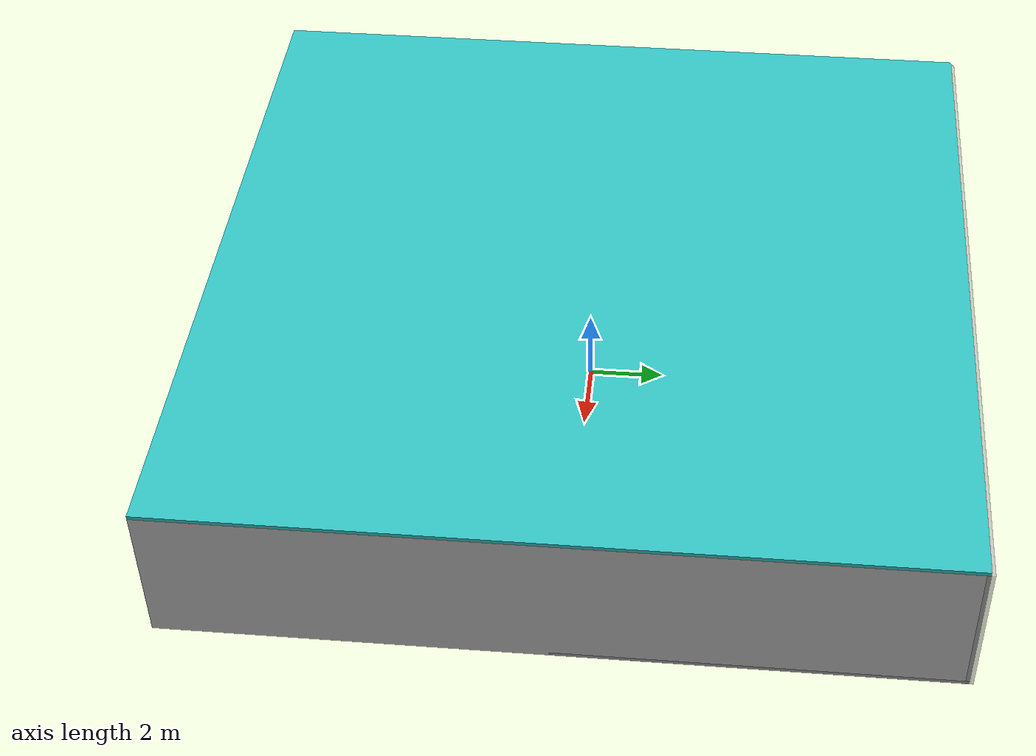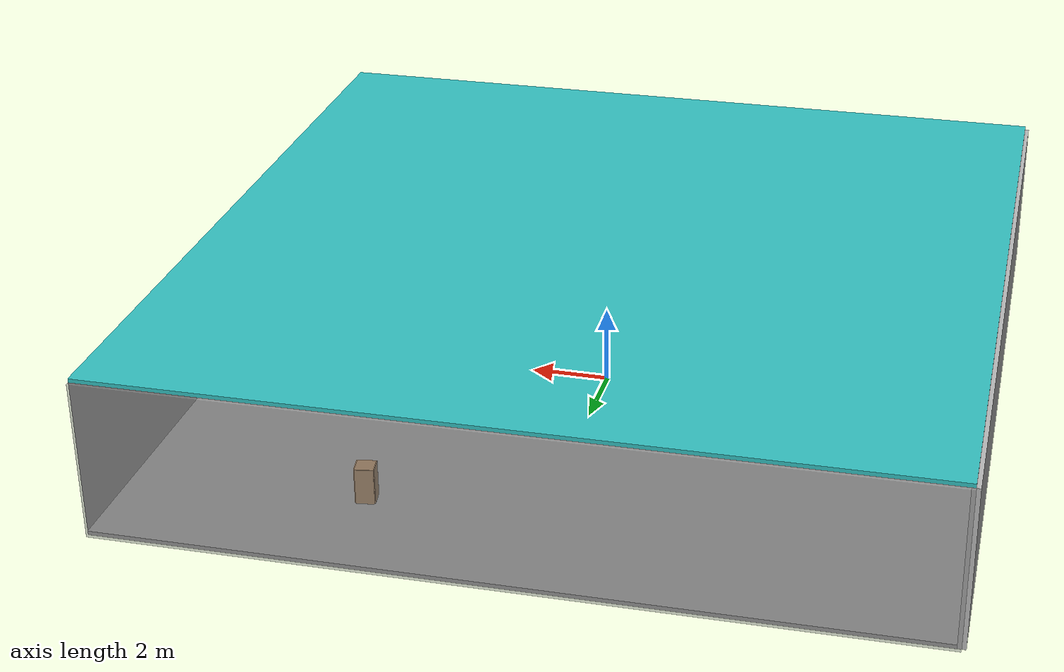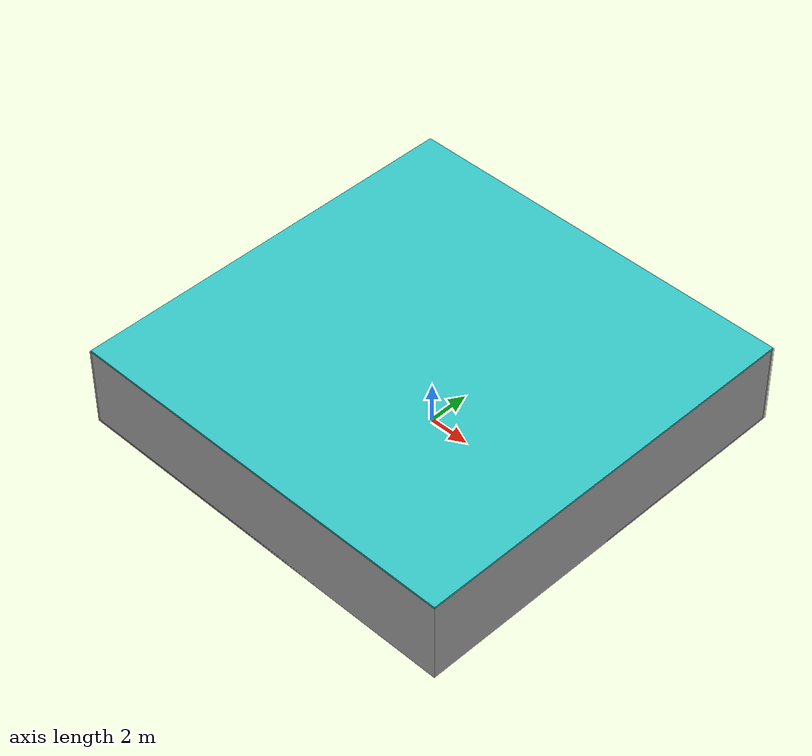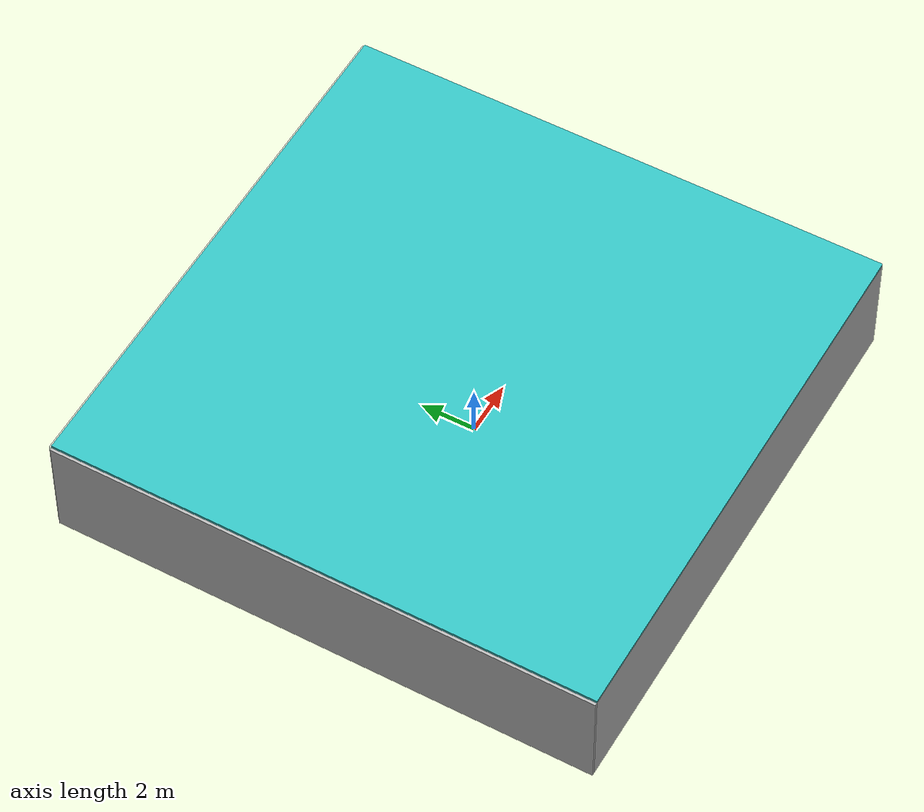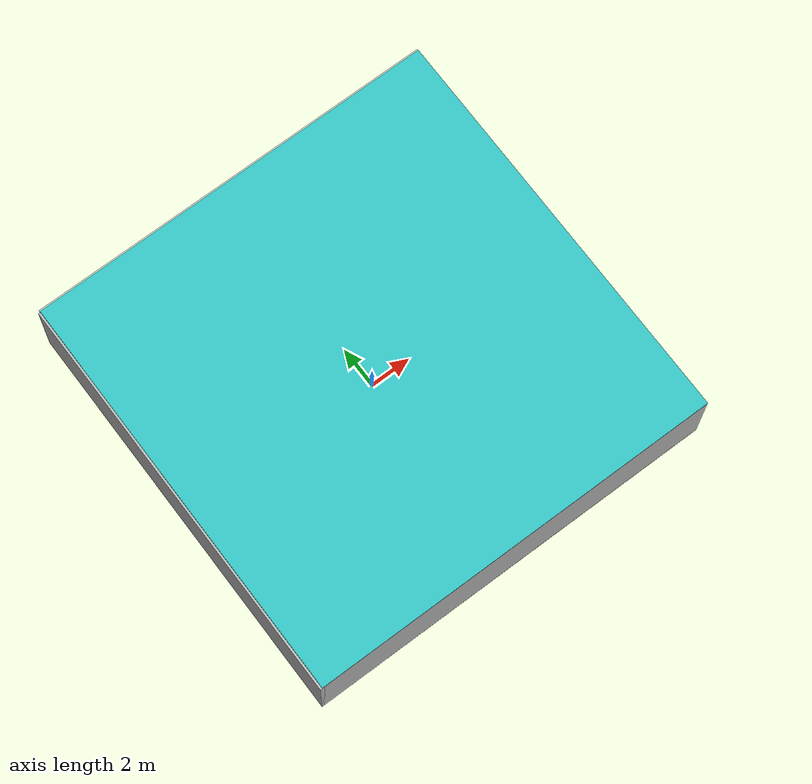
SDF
<sdf version="1.4">
 <world name="default">
  <physics type="ode">
   <max_step_size>0.001</max_step_size>
   <real_time_factor>1</real_time_factor>
   <real_time_update_rate>1000</real_time_update_rate>
   <gravity>0 0 -9.8</gravity>
  </physics>
  <scene><ambient>0.4 0.4 0.4 1</ambient><background>0.7 0.7 0.7 1</background><shadows>1</shadows></scene>
  <model name="Surrounding">
   <static>1</static>
   <link name="Ceiling">
    <collision name="Ceiling_Collision"><geometry><box><size>20 20 0.1</size></box></geometry></collision>
    <visual name="Ceiling_Visual">
     <geometry><box><size>20 20 0.1</size></box></geometry>
     <material>
      <script><uri>file://media/materials/scripts/gazebo.material</uri><name>Gazebo/Turquoise</name></script>
     </material>
    </visual>
    <pose>0 0 4.05 0 0 0</pose>
   </link>
   <link name="Wall_South">
    <collision name="Wall_South_Collision">
     <geometry><box><size>20 0 4</size></box></geometry>
     <pose>0 0 2 0 -0 0</pose>
    </collision>
    <visual name="Wall_South_Visual">
     <pose>0 0 2 0 -0 0</pose>
     <geometry><box><size>20 0 4</size></box></geometry>
     <material>
      <script><uri>file://media/materials/scripts/gazebo.material</uri><name>Gazebo/JointAnchor</name></script>
     </material>
    </visual>
    <velocity_decay><linear>0</linear><angular>0</angular></velocity_decay>
    <pose>0 -10 0 0 -0 0</pose>
   </link>
   <link name="Wall_East">
    <collision name="Wall_21_Collision">
     <geometry><box><size>20 0 4</size></box></geometry>
     <pose>0 0 2 0 -0 0</pose>
    </collision>
    <visual name="Wall_21_Visual">
     <pose>0 0 2 0 -0 0</pose>
     <geometry><box><size>20 0 4</size></box></geometry>
     <material>
      <script><uri>file://media/materials/scripts/gazebo.material</uri><name>Gazebo/LightOff</name></script>
     </material>
    </visual>
    <velocity_decay><linear>0</linear><angular>0</angular></velocity_decay>
    <pose>10 0 0 0 -0 1.5708</pose>
   </link>
   <link name="Wall_North">
    <collision name="Wall_22_Collision">
     <geometry><box><size>20 0.2 4</size></box></geometry>
     <pose>0 0 2 0 -0 0</pose>
    </collision>
    <visual name="Wall_22_Visual">
     <pose>0 0 2 0 -0 0</pose>
     <geometry><box><size>20 0.2 4</size></box></geometry>
     <material>
      <script><uri>file://media/materials/scripts/gazebo.material</uri><name>Gazebo/GreyTransparent</name></script>
     </material>
    </visual>
    <velocity_decay><linear>0</linear><angular>0</angular></velocity_decay>
    <pose>0 10 0 0 -0 0</pose>
   </link>
   <link name="Wall_West">
    <collision name="Wall_23_Collision">
     <geometry><box><size>20 0.2 4</size></box></geometry>
     <pose>0 0 2 0 -0 0</pose>
    </collision>
    <visual name="Wall_23_Visual">
     <pose>0 0 2 0 -0 0</pose>
     <geometry><box><size>20 0.2 4</size></box></geometry>
     <material>
      <script><uri>file://media/materials/scripts/gazebo.material</uri><name>Gazebo/Pioneer2Body</name></script>
     </material>
    </visual>
    <velocity_decay><linear>0</linear><angular>0</angular></velocity_decay>
    <pose>-10 0 0 0 0 -1.5708</pose>
   </link>
   <link name="Ground_link">
    <collision name="collision">
     <pose>0 0 .05 0 -0 0</pose>
     <geometry><box><size>20 20 0.1</size></box></geometry>
    </collision>
    <visual name="visual">
     <pose>0 0 .05 0 -0 0</pose>
     <geometry><box><size>20 20 0.1</size></box></geometry>
     <material>
      <script><uri>file://media/materials/scripts/gazebo.material</uri><name>Gazebo/GreyGradientSky</name></script>
     </material>
    </visual>
   </link>
   <static>1</static>
  </model>
  <spherical_coordinates>
   <surface_model>EARTH_WGS84</surface_model>
   <latitude_deg>0</latitude_deg>
   <longitude_deg>0</longitude_deg>
   <elevation>0</elevation>
   <heading_deg>0</heading_deg>
  </spherical_coordinates>
  <light name="lightball_0" type="diffuse">
   <diffuse>0.8 0.8 0.8 1</diffuse>
   <specular>0.2 0.2 0.2 1</specular>
   <attenuation>
    <range>100</range>
    <constant>0.7</constant>
    <linear>0.01</linear>
    <quadratic>0.001</quadratic>
   </attenuation>
   <direction>-0.5 0.1 -0.9</direction>
   <pose>4.64818275325 -7.44671362355 0.949345539439 0 0 0</pose>
  </light>
  <light name="lightball_1" type="diffuse">
   <diffuse>0.8 0.8 0.8 1</diffuse>
   <specular>0.2 0.2 0.2 1</specular>
   <attenuation>
    <range>100</range>
    <constant>0.7</constant>
    <linear>0.01</linear>
    <quadratic>0.001</quadratic>
   </attenuation>
   <direction>-0.5 0.1 -0.9</direction>
   <pose>-4.62974983557 7.14074903509 2.0341293889 0 0 0</pose>
  </light>
  <include>
   <uri>model://textured_shapes</uri>
   <pose>-4.63590525115 -5.10003082646 0 0 0 0.115857073151</pose>
  </include>
  <include><uri>model://cabinet</uri><pose>-1.40980300465 -4.87419573743 0 0 0 1.00163644686</pose></include>
  <include>
   <uri>model://robocup_3Dsim_goal</uri>
   <pose>-2.28845132211 1.43621932769 0 0 0 2.63303922228</pose>
  </include>
  <include>
   <uri>model://robocup_3Dsim_goal</uri>
   <pose>2.17461606455 2.18955687845 0 0 0 2.50158534914</pose>
  </include>
  <include><uri>model://cabinet</uri><pose>4.78750016531 -7.45472478569 0 0 0 2.30972399835</pose></include>
  <include><uri>model://cabinet</uri><pose>4.1708448264 7.218347544 0 0 0 1.72629360085</pose></include>
  <include>
   <uri>model://textured_shapes</uri>
   <pose>6.81903581016 -7.48340256324 0 0 0 1.93448665999</pose>
  </include>
 </world>
</sdf>

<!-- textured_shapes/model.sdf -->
<sdf version="1.6">
  <model name="textured_shapes">
    <pose>0 0 0.5 0 0 0</pose>
    <link name="box">
      <pose>0 -1.5 0 0 0 0</pose>
      <collision name="collision">
        <geometry>
          <box>
            <size>1 1 1</size>
          </box>
        </geometry>
      </collision>
      <visual name="visual">
        <geometry>
          <box>
            <size>1 1 1</size>
          </box>
        </geometry>
        <material>
          <script>
            <uri>model://../model_source/models/textured_shapes/materials/scripts</uri>
            <uri>model://../model_source/models/textured_shapes/materials/textures</uri>
            <name>TexturedShape/Squares</name>
          </script>
        </material>
      </visual>
    </link>
    <link name="sphere">
      <collision name="collision">
        <geometry>
          <sphere>
            <radius>0.5</radius>
          </sphere>
        </geometry>
      </collision>
      <visual name="visual">
        <geometry>
          <sphere>
            <radius>0.5</radius>
          </sphere>
        </geometry>
        <material>
          <script>
            <uri>model://../model_source/models/textured_shapes/materials/scripts</uri>
            <uri>model://../model_source/models/textured_shapes/materials/textures</uri>
            <name>TexturedShape/Squares</name>
          </script>
        </material>
      </visual>
    </link>
    <link name="cylinder">
      <pose>0 1.5 0 0 0 0</pose>
      <collision name="collision">
        <geometry>
          <cylinder>
            <radius>0.5</radius>
            <length>1</length>
          </cylinder>
        </geometry>
      </collision>
      <visual name="visual">
        <geometry>
          <cylinder>
            <radius>0.5</radius>
            <length>1</length>
          </cylinder>
        </geometry>
        <material>
          <script>
            <uri>model://../model_source/models/textured_shapes/materials/scripts</uri>
            <uri>model://../model_source/models/textured_shapes/materials/textures</uri>
            <name>TexturedShape/Squares</name>
          </script>
        </material>
      </visual>
    </link>
  </model>
</sdf>

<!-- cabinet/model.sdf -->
<sdf version="1.5">
  <model name="cabinet">
    <static>true</static>
    <link name="cabinet_bottom_plate">
      <inertial>
        <pose>0 0 -1 0 0 0</pose>
        <inertia>
          <ixx>2.050000</ixx>
          <ixy>0</ixy>
          <ixz>0</ixz>
          <iyy>2.050000</iyy>
          <iyz>0</iyz>
          <izz>2.050000</izz>
        </inertia>
        <mass>25.000000</mass>
      </inertial>
      <collision name="cabinet_bottom_plate_geom">
        <pose>0 0 0.010000 0 0 0</pose>
        <geometry>
          <box>
            <size>0.450000 0.450000 0.020000</size>
          </box>
        </geometry>
      </collision>
      <visual name="cabinet_bottom_plate_geom_visual">
        <pose>0 0 0.010000 0 0 0</pose>
        <geometry>
          <box>
            <size>0.450000 0.450000 0.020000</size>
          </box>
        </geometry>
        <material>
          <script>
            <uri>model://media/materials/scripts/gazebo.material</uri>
            <name>Gazebo/Wood</name>
          </script>
        </material>
      </visual>
      <collision name="cabinet_bottom_plate_geom_cabinet_back_plate">
        <pose>0.235000 0 0.510000 0 0 0</pose>
        <geometry>
          <box>
            <size>0.020000 0.450000 1.020000</size>
          </box>
        </geometry>
      </collision>
      <visual name="cabinet_bottom_plate_geom_cabinet_back_plate_visual">
        <pose>0.235000 0 0.510000 0 0 0</pose>
        <geometry>
          <box>
            <size>0.020000 0.450000 1.020000</size>
          </box>
        </geometry>
        <material>
          <script>
            <uri>model://media/materials/scripts/gazebo.material</uri>
            <name>Gazebo/Wood</name>
          </script>
        </material>
      </visual>
      <collision name="cabinet_bottom_plate_geom_cabinet_left_plate">
        <pose>0 0.235000 0.510000 0 0 0</pose>
        <geometry>
          <box>
            <size>0.450000 0.020000 1.020000</size>
          </box>
        </geometry>
      </collision>
      <visual name="cabinet_bottom_plate_geom_cabinet_left_plate_visual">
        <pose>0 0.235000 0.510000 0 0 0</pose>
        <geometry>
          <box>
            <size>0.450000 0.020000 1.020000</size>
          </box>
        </geometry>
        <material>
          <script>
            <uri>model://media/materials/scripts/gazebo.material</uri>
            <name>Gazebo/Wood</name>
          </script>
        </material>
      </visual>
      <collision name="cabinet_bottom_plate_geom_cabinet_middle_plate">
        <pose>0 0 0.510000 0 0 0</pose>
        <geometry>
          <box>
            <size>0.450000 0.450000 0.020000</size>
          </box>
        </geometry>
      </collision>
      <visual name="cabinet_bottom_plate_geom_cabinet_middle_plate_visual">
        <pose>0 0 0.510000 0 0 0</pose>
        <geometry>
          <box>
            <size>0.450000 0.450000 0.020000</size>
          </box>
        </geometry>
        <material>
          <script>
            <uri>model://media/materials/scripts/gazebo.material</uri>
            <name>Gazebo/Wood</name>
          </script>
        </material>
      </visual>
      <collision name="cabinet_bottom_plate_geom_cabinet_right_plate">
        <pose>0 -0.235000 0.510000 0 0 0</pose>
        <geometry>
          <box>
            <size>0.450000 0.020000 1.020000</size>
          </box>
        </geometry>
      </collision>
      <visual name="cabinet_bottom_plate_geom_cabinet_right_plate_visual">
        <pose>0 -0.235000 0.510000 0 0 0</pose>
        <geometry>
          <box>
            <size>0.450000 0.020000 1.020000</size>
          </box>
        </geometry>
        <material>
          <script>
            <uri>model://media/materials/scripts/gazebo.material</uri>
            <name>Gazebo/Wood</name>
          </script>
        </material>
      </visual>
      <collision name="cabinet_bottom_plate_geom_cabinet_top_plate">
        <pose>0 0 1.010000 0 0 0</pose>
        <geometry>
          <box>
            <size>0.450000 0.450000 0.020000</size>
          </box>
        </geometry>
      </collision>
      <visual name="cabinet_bottom_plate_geom_cabinet_top_plate_visual">
        <pose>0 0 1.010000 0 0 0</pose>
        <geometry>
          <box>
            <size>0.450000 0.450000 0.020000</size>
          </box>
        </geometry>
        <material>
          <script>
            <uri>model://media/materials/scripts/gazebo.material</uri>
            <name>Gazebo/Wood</name>
          </script>
        </material>
      </visual>
    </link>
  </model>
</sdf>

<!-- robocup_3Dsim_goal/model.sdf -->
<sdf version="1.5">
  <model name="robocup_3d_goal">
    <static>true</static>
    <link name="left_post">
      <pose>0 1.05 0.45 0 0 0</pose>
      <collision name="collision">
        <geometry>
          <cylinder>
            <radius>0.05</radius>
            <length>0.9</length>
          </cylinder>
        </geometry>
      </collision>
      <visual name="visual">
        <geometry>
          <cylinder>
            <radius>0.05</radius>
            <length>0.9</length>
          </cylinder>
        </geometry>
        <material>
          <script>
            <uri>file://media/materials/scripts/gazebo.material</uri>
            <name>Gazebo/ZincYellow</name>
          </script>
        </material>
      </visual>
    </link>
    <link name="left_support_horiz_lower">
      <pose>0.30 1.05 0.01 0 0 0</pose>
      <collision name="collision">
        <geometry>
          <box>
            <size>0.50 0.02 0.02</size>
          </box>
        </geometry>
      </collision>
      <visual name="visual">
        <geometry>
          <box>
            <size>0.50 0.02 0.02</size>
          </box>
        </geometry>
        <material>
          <script>
            <uri>file://media/materials/scripts/gazebo.material</uri>
            <name>Gazebo/White</name>
          </script>
        </material>
      </visual>
    </link>
    <link name="left_support_horiz_upper">
      <pose>0.30 1.05 0.79 0 0 0</pose>
      <collision name="collision">
        <geometry>
          <box>
            <size>0.50 0.02 0.02</size>
          </box>
        </geometry>
      </collision>
      <visual name="visual">
        <geometry>
          <box>
            <size>0.50 0.02 0.02</size>
          </box>
        </geometry>
        <material>
          <script>
            <uri>file://media/materials/scripts/gazebo.material</uri>
            <name>Gazebo/White</name>
          </script>
        </material>
      </visual>
    </link>
    <link name="left_support_vertical">
      <pose>0.56 1.05 0.4 0 1.5708 0</pose>
      <collision name="collision">
        <geometry>
          <box>
            <size>0.80 0.02 0.02</size>
          </box>
        </geometry>
      </collision>
      <visual name="visual">
        <geometry>
          <box>
            <size>0.80 0.02 0.02</size>
          </box>
        </geometry>
        <material>
          <script>
            <uri>file://media/materials/scripts/gazebo.material</uri>
            <name>Gazebo/White</name>
          </script>
        </material>
      </visual>
    </link>
    <link name="right_support_horiz_lower">
      <pose>0.30 -1.05 0.01 0 0 0</pose>
      <collision name="collision">
        <geometry>
          <box>
            <size>0.50 0.02 0.02</size>
          </box>
        </geometry>
      </collision>
      <visual name="visual">
        <geometry>
          <box>
            <size>0.50 0.02 0.02</size>
          </box>
        </geometry>
        <material>
          <script>
            <uri>file://media/materials/scripts/gazebo.material</uri>
            <name>Gazebo/White</name>
          </script>
        </material>
      </visual>
    </link>
    <link name="right_support_horiz_upper">
      <pose>0.30 -1.05 0.79 0 0 0</pose>
      <collision name="collision">
        <geometry>
          <box>
            <size>0.50 0.02 0.02</size>
          </box>
        </geometry>
      </collision>
      <visual name="visual">
        <geometry>
          <box>
            <size>0.50 0.02 0.02</size>
          </box>
        </geometry>
        <material>
          <script>
            <uri>file://media/materials/scripts/gazebo.material</uri>
            <name>Gazebo/White</name>
          </script>
        </material>
      </visual>
    </link>
    <link name="right_support_vertical">
      <pose>0.56 -1.05 0.4 0 1.5708 0</pose>
      <collision name="collision">
        <geometry>
          <box>
            <size>0.80 0.02 0.02</size>
          </box>
        </geometry>
      </collision>
      <visual name="visual">
        <geometry>
          <box>
            <size>0.80 0.02 0.02</size>
          </box>
        </geometry>
        <material>
          <script>
            <uri>file://media/materials/scripts/gazebo.material</uri>
            <name>Gazebo/White</name>
          </script>
        </material>
      </visual>
    </link>
    <link name="center_support_horiz_lower">
      <pose>0.56 0 0.01 0 1.5708 0</pose>
      <collision name="collision">
        <geometry>
          <box>
            <size>0.02 2.08 0.02</size>
          </box>
        </geometry>
      </collision>
      <visual name="visual">
        <geometry>
          <box>
            <size>0.02 2.08 0.02</size>
          </box>
        </geometry>
        <material>
          <script>
            <uri>file://media/materials/scripts/gazebo.material</uri>
            <name>Gazebo/White</name>
          </script>
        </material>
      </visual>
    </link>
    <link name="center_support_horiz_upper">
      <pose>0.56 0 0.79 0 1.5708 0</pose>
      <collision name="collision">
        <geometry>
          <box>
            <size>0.02 2.08 0.02</size>
          </box>
        </geometry>
      </collision>
      <visual name="visual">
        <geometry>
          <box>
            <size>0.02 2.08 0.02</size>
          </box>
        </geometry>
        <material>
          <script>
            <uri>file://media/materials/scripts/gazebo.material</uri>
            <name>Gazebo/White</name>
          </script>
        </material>
      </visual>
    </link>
    <link name="right_post">
      <pose>0 -1.05 0.45 0 0 0</pose>
      <collision name="collision">
        <geometry>
          <cylinder>
            <radius>0.05</radius>
            <length>0.9</length>
          </cylinder>
        </geometry>
      </collision>
      <visual name="visual">
        <geometry>
          <cylinder>
            <radius>0.05</radius>
            <length>0.9</length>
          </cylinder>
        </geometry>
        <material>
          <script>
            <uri>file://media/materials/scripts/gazebo.material</uri>
            <name>Gazebo/ZincYellow</name>
          </script>
        </material>
      </visual>
    </link>
    <link name="crossbar">
      <pose>0 0 0.85 1.57 1.57 0</pose>
      <collision name="collision">
        <geometry>
          <cylinder>
            <radius>0.05</radius>
            <length>2.0</length>
          </cylinder>
        </geometry>
      </collision>
      <visual name="visual">
        <geometry>
          <cylinder>
            <radius>0.05</radius>
            <length>2.0</length>
          </cylinder>
        </geometry>
        <material>
          <script>
            <uri>file://media/materials/scripts/gazebo.material</uri>
            <name>Gazebo/ZincYellow</name>
          </script>
        </material>
      </visual>
    </link>
    <link name="center_net">
      <pose>0.56 0 0.40 0 0 0</pose>
      <collision name="collision">
        <geometry>
          <box>
            <size>0.01 2.1 0.80</size>
          </box>
        </geometry>
      </collision>
      <visual name="visual">
        <geometry>
          <box>
            <size>0.01 2.1 0.80</size>
          </box>
        </geometry>
        <material>
          <script>
            <uri>model://../model_source/models/robocup09_spl_field/materials/scripts/</uri>
            <uri>model://../model_source/models/robocup09_spl_field/materials/textures/</uri>
            <name>RoboCup/Net</name>
          </script>
        </material>
      </visual>
    </link>
    <link name="left_net">
      <pose>0.30 1.05 0.40 0 0 0</pose>
      <collision name="collision">
        <geometry>
          <box>
            <size>0.50 0.01 0.76</size>
          </box>
        </geometry>
      </collision>
      <visual name="visual">
        <geometry>
          <box>
            <size>0.50 0.01 0.76</size>
          </box>
        </geometry>
        <material>
          <script>
            <uri>model://../model_source/models/robocup09_spl_field/materials/scripts/</uri>
            <uri>model://../model_source/models/robocup09_spl_field/materials/textures/</uri>
            <name>RoboCup/Net</name>
          </script>
        </material>
      </visual>
    </link>
    <link name="right_net">
      <pose>0.30 -1.05 0.40 0 0 0</pose>
      <collision name="collision">
        <geometry>
          <box>
            <size>0.50 0.01 0.76</size>
          </box>
        </geometry>
      </collision>
      <visual name="visual">
        <geometry>
          <box>
            <size>0.50 0.01 0.76</size>
          </box>
        </geometry>
        <material>
          <script>
            <uri>model://../model_source/models/robocup09_spl_field/materials/scripts/</uri>
            <uri>model://../model_source/models/robocup09_spl_field/materials/textures/</uri>
            <name>RoboCup/Net</name>
          </script>
        </material>
      </visual>
    </link>
  </model>
</sdf>
